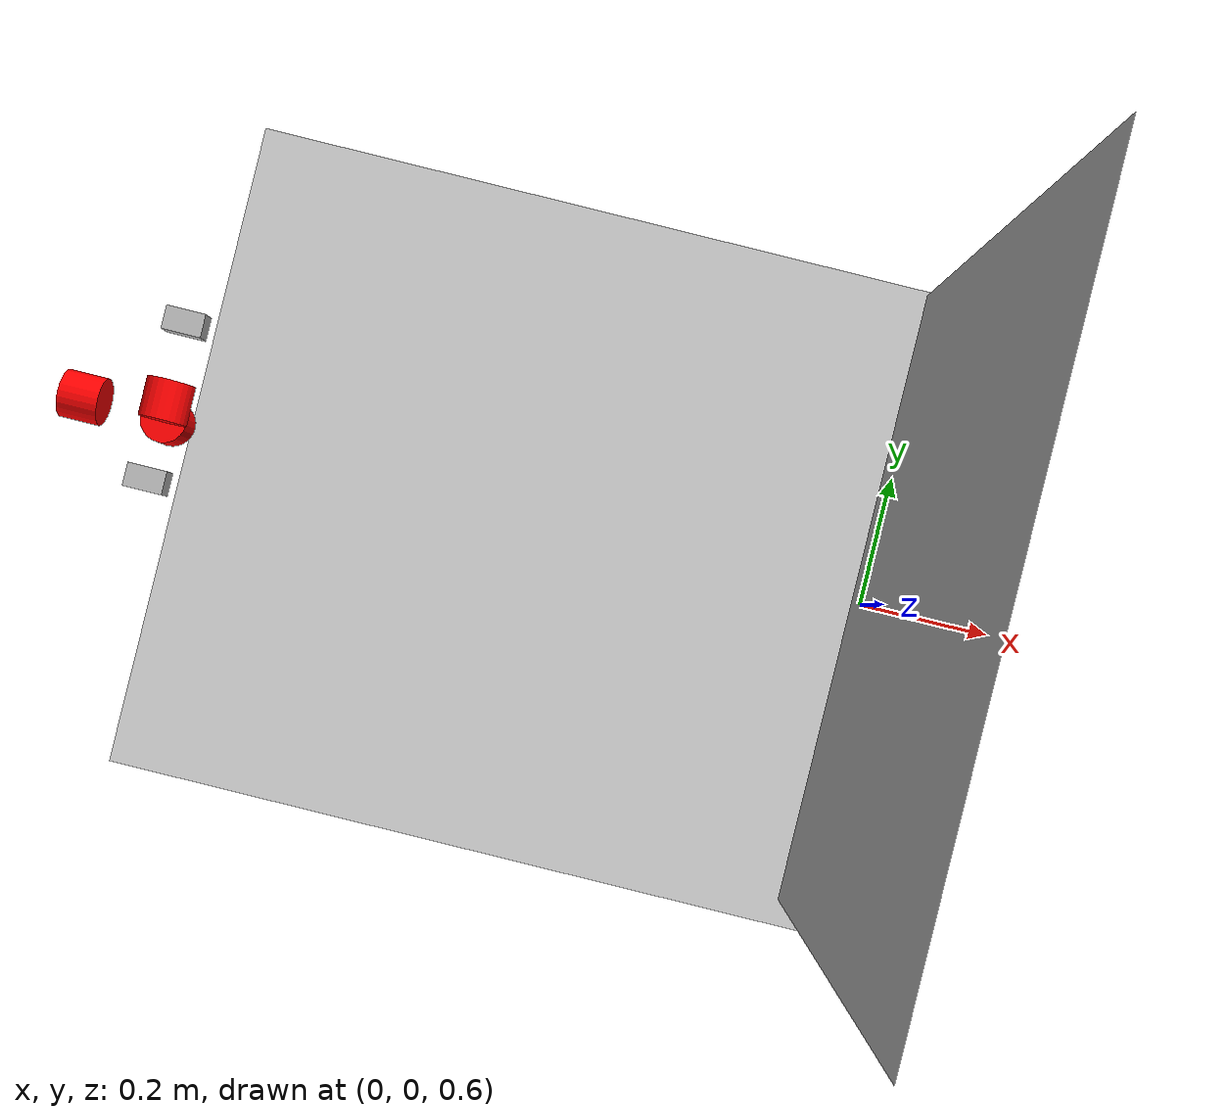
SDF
<?xml version="1.0" ?>
<sdf version="1.8">
  <world name="calibration">
    <plugin name='gz::sim::systems::Physics' filename='gz-sim-physics-system'/>
    <plugin name='gz::sim::systems::UserCommands' filename='gz-sim-user-commands-system'/>
    <plugin name='gz::sim::systems::SceneBroadcaster' filename='gz-sim-scene-broadcaster-system'/>
    <plugin name='gz::sim::systems::Contact' filename='gz-sim-contact-system'/>
    <plugin name='gz::sim::systems::Imu' filename='gz-sim-imu-system'/>
    <plugin name='gz::sim::systems::Sensors' filename='gz-sim-sensors-system'>
      <render_engine>ogre2</render_engine>
    </plugin>

    <!-- SCENE -->
    <scene>
      <ambient>1.0 1.0 1.0</ambient>
      <background>0.8 0.8 0.8</background>
    </scene>

    <!-- SUN -->
    <light name='sunUTC' type='directional'>
      <pose>0 0 500 0 -0 0</pose>
      <cast_shadows>true</cast_shadows>
      <intensity>1</intensity>
      <direction>0.001 0.625 -0.78</direction>
      <diffuse>0.904 0.904 0.904 1</diffuse>
      <specular>0.271 0.271 0.271 1</specular>
      <attenuation>
        <range>2000</range>
        <linear>0</linear>
        <constant>1</constant>
        <quadratic>0</quadratic>
      </attenuation>
      <spot>
        <inner_angle>0</inner_angle>
        <outer_angle>0</outer_angle>
        <falloff>0</falloff>
      </spot>
    </light>

    <!-- GROUND PLANE -->
    <model name="ground_plane">
      <static>true</static>
      <link name="link">
        <collision name="collision">
          <geometry>
            <plane>
              <normal>0 0 1</normal>
              <size>100 100</size>
            </plane>
          </geometry>
        </collision>
        <visual name="visual">
          <geometry>
            <plane>
              <normal>0 0 1</normal>
              <size>100 100</size>
            </plane>
          </geometry>
          <material>
            <ambient>0.8 0.8 0.8 1</ambient>
            <diffuse>0.8 0.8 0.8 1</diffuse>
            <specular>0.8 0.8 0.8 1</specular>
          </material>
        </visual>
      </link>
    </model>

    <!-- ARPILGRID -->
    <include>
      <static>true</static>
      <uri>model://aprilgrid</uri>
      <pose>0 0.5 0.515 1.5708 0 -1.5708</pose>
    </include>

    <!-- GIMBAL -->
    <include>
      <uri>model://gimbal</uri>
      <pose>-1 0 1 0 0 0</pose>
    </include>
  </world>
</sdf>

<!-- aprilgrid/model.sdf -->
<sdf version="1.6">
  <model name="aprilgrid">
    <allow_auto_disable>true</allow_auto_disable>
    <link name="aprilgrid">
      <kinematic>true</kinematic>

      <visual name="visual">
        <geometry>
          <mesh>
            <uri>model://aprilgrid/aprilgrid.dae</uri>
            <scale>1 1 1</scale>
          </mesh>
        </geometry>
      </visual>
    </link>
    <plugin
      filename="gz-sim-pose-publisher-system"
      name="gz::sim::systems::PosePublisher">
      <publish_link_pose>false</publish_link_pose>
      <publish_collision_pose>false</publish_collision_pose>
      <publish_visual_pose>false</publish_visual_pose>
      <publish_nested_model_pose>true</publish_nested_model_pose>
    </plugin>
  </model>
</sdf>

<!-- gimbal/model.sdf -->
<sdf version="1.9">
  <model name="gimbal">

    <!-- Gimbal base -->
    <link name="gimbal_base">
      <gravity>0</gravity>
      <pose>0.0 0.0 0.0 0.0 0.0 0.0</pose>
    </link>

    <!-- Gimbal yaw -->
    <link name="gimbal_yaw">
      <gravity>0</gravity>
      <pose>0.0 0.0 0.0 0.0 0.0 0.0</pose>

      <inertial>
        <inertia>
          <ixx>0.032</ixx>
          <ixy>0</ixy>
          <ixz>0</ixz>
          <iyy>0.032</iyy>
          <iyz>0</iyz>
          <izz>0.00012</izz>
        </inertia>
        <mass>0.200</mass>
      </inertial>

      <visual name="visual">
        <geometry>
          <cylinder>
            <radius>0.03</radius>
            <length>0.05</length>
          </cylinder>
        </geometry>

        <material>
            <ambient>1.0 0.0 0.0 1</ambient>
            <diffuse>1.0 0.0 0.0 1</diffuse>
            <specular>1.0 0.0 0.0 1</specular>
        </material>
      </visual>
    </link>

    <!-- Gimbal Roll -->
    <link name="gimbal_roll">
      <gravity>0</gravity>
      <pose relative_to="gimbal_yaw">-0.08 0 0.1 0 1.5708 0</pose>

      <inertial>
        <inertia>
          <ixx>0.032</ixx>
          <ixy>0</ixy>
          <ixz>0</ixz>
          <iyy>0.032</iyy>
          <iyz>0</iyz>
          <izz>0.00012</izz>
        </inertia>
        <mass>0.200</mass>
      </inertial>

      <visual name="visual">
        <geometry>
          <cylinder>
            <radius>0.03</radius>
            <length>0.05</length>
          </cylinder>
        </geometry>

        <material>
            <ambient>1.0 0.0 0.0 1</ambient>
            <diffuse>1.0 0.0 0.0 1</diffuse>
            <specular>1.0 0.0 0.0 1</specular>
        </material>
      </visual>
    </link>

    <!-- Gimbal pitch -->
    <link name="gimbal_pitch">
      <gravity>0</gravity>
      <pose relative_to="gimbal_roll">0 0.02 0.1 1.5708 0 0</pose>

      <inertial>
        <inertia>
          <ixx>0.032</ixx>
          <ixy>0</ixy>
          <ixz>0</ixz>
          <iyy>0.032</iyy>
          <iyz>0</iyz>
          <izz>0.00012</izz>
        </inertia>
        <mass>0.200</mass>
      </inertial>

      <visual name="visual">
        <geometry>
          <cylinder>
            <radius>0.03</radius>
            <length>0.05</length>
          </cylinder>
        </geometry>

        <material>
            <ambient>1.0 0.0 0.0 1</ambient>
            <diffuse>1.0 0.0 0.0 1</diffuse>
            <specular>1.0 0.0 0.0 1</specular>
        </material>
      </visual>
    </link>

    <!-- camera0 -->
    <link name="camera0">
      <gravity>0</gravity>
      <pose relative_to="gimbal_pitch">0 0 -0.1 -1.5708 0 1.5708</pose>

      <inertial>
        <inertia>
          <ixx>0.032</ixx>
          <ixy>0</ixy>
          <ixz>0</ixz>
          <iyy>0.032</iyy>
          <iyz>0</iyz>
          <izz>0.00012</izz>
        </inertia>
        <mass>0.08</mass>
      </inertial>

      <visual name="visual">
        <pose>0.0 0.0 0.0 0 0 0</pose>
        <geometry>
          <box>
            <size>0.05 0.03 0.03</size>
          </box>
        </geometry>
      </visual>

      <collision name="collision">
        <pose>0.0 0.0 0.0 0 0 0</pose>
        <geometry>
          <box>
            <size>0.05 0.03 0.03</size>
          </box>
        </geometry>
      </collision>

      <sensor name="camera0" type="camera">
        <topic>/gimbal/camera0</topic>
        <camera>
          <horizontal_fov>1.047</horizontal_fov>
          <image>
            <width>640</width>
            <height>640</height>
          </image>
        </camera>

        <always_on>1</always_on>
        <update_rate>20</update_rate>
        <visualize>true</visualize>
      </sensor>
    </link>

    <!-- camera1 -->
    <link name="camera1">
      <gravity>0</gravity>
      <pose relative_to="gimbal_pitch">0 0 0.1 -1.5708 0 1.5708</pose>

      <inertial>
        <inertia>
          <ixx>0.032</ixx>
          <ixy>0</ixy>
          <ixz>0</ixz>
          <iyy>0.032</iyy>
          <iyz>0</iyz>
          <izz>0.00012</izz>
        </inertia>
        <mass>0.08</mass>
      </inertial>

      <visual name="visual">
        <pose>0.0 0.0 0.0 0 0 0</pose>
        <geometry>
          <box>
            <size>0.05 0.03 0.03</size>
          </box>
        </geometry>
      </visual>

      <collision name="collision">
        <pose>0.0 0.0 0.0 0 0 0</pose>
        <geometry>
          <box>
            <size>0.05 0.03 0.03</size>
          </box>
        </geometry>
      </collision>

      <sensor name="camera1" type="camera">
        <topic>/gimbal/camera1</topic>
        <camera>
          <horizontal_fov>1.047</horizontal_fov>
          <image>
            <width>640</width>
            <height>640</height>
          </image>
        </camera>

        <always_on>1</always_on>
        <update_rate>20</update_rate>
        <visualize>true</visualize>
      </sensor>
    </link>

    <!-- World to gimbal base joint  -->
    <joint name="world_fixed" type="fixed">
      <parent>world</parent>
      <child>gimbal_base</child>
    </joint>

    <!-- Yaw joint -->
    <joint name="joint_yaw" type="revolute">
      <pose>0.0 0.0 0.0 0.0 0.0 0.0</pose>
      <parent>gimbal_base</parent>
      <child>gimbal_yaw</child>
      <axis>
        <xyz>0 0 1</xyz>
        <dynamics>
          <damping>1.0</damping>
        </dynamics>
      </axis>
    </joint>
    <plugin
        filename="gz-sim-joint-position-controller-system"
        name="gz::sim::systems::JointPositionController">
      <joint_name>joint_yaw</joint_name>
      <topic>/gimbal/joint0_cmd</topic>
      <p_gain>10</p_gain>
      <i_gain>0.01</i_gain>
      <d_gain>0.5</d_gain>
      <i_max>1</i_max>
      <i_min>-1</i_min>
      <cmd_max>1000</cmd_max>
      <cmd_min>-1000</cmd_min>
    </plugin>
    <plugin
        filename="gz-sim-joint-state-publisher-system"
        name="gz::sim::systems::JointStatePublisher">
      <joint_name>joint_yaw</joint_name>
      <topic>/gimbal/joint0_state</topic>
    </plugin>

    <!-- Roll joint -->
    <joint name="joint_roll" type="revolute">
      <pose>0 0.0 0 0 0 0</pose>
      <parent>gimbal_yaw</parent>
      <child>gimbal_roll</child>
      <axis>
        <xyz>0 0 1</xyz>
        <dynamics>
          <damping>1.0</damping>
        </dynamics>
      </axis>
    </joint>
    <plugin
        filename="gz-sim-joint-position-controller-system"
        name="gz::sim::systems::JointPositionController">
      <joint_name>joint_roll</joint_name>
      <topic>/gimbal/joint1_cmd</topic>
      <p_gain>10</p_gain>
      <i_gain>0.01</i_gain>
      <d_gain>0.5</d_gain>
      <i_max>1</i_max>
      <i_min>-1</i_min>
      <cmd_max>1000</cmd_max>
      <cmd_min>-1000</cmd_min>
    </plugin>
    <plugin
        filename="gz-sim-joint-state-publisher-system"
        name="gz::sim::systems::JointStatePublisher">
      <joint_name>joint_roll</joint_name>
      <topic>/gimbal/joint1_state</topic>
    </plugin>

    <!-- Pitch joint -->
    <joint name="joint_pitch" type="revolute">
      <pose>0 0.0 0 0 0 0</pose>
      <parent>gimbal_roll</parent>
      <child>gimbal_pitch</child>
      <axis>
        <xyz>0 0 1</xyz>
        <dynamics>
          <damping>1.0</damping>
        </dynamics>
      </axis>
    </joint>
    <plugin
        filename="gz-sim-joint-position-controller-system"
        name="gz::sim::systems::JointPositionController">
      <joint_name>joint_pitch</joint_name>
      <topic>/gimbal/joint2_cmd</topic>
      <p_gain>10</p_gain>
      <i_gain>0.01</i_gain>
      <d_gain>0.5</d_gain>
      <i_max>1</i_max>
      <i_min>-1</i_min>
      <cmd_max>1000</cmd_max>
      <cmd_min>-1000</cmd_min>
    </plugin>
    <plugin
        filename="gz-sim-joint-state-publisher-system"
        name="gz::sim::systems::JointStatePublisher">
      <joint_name>joint_pitch</joint_name>
      <topic>/gimbal/joint2_state</topic>
    </plugin>

    <!-- Gimbal pitch to camera0 -->
    <joint name="camera0_extrinsic" type="fixed">
      <pose>0 0 0 0 0 0</pose>
      <parent>gimbal_pitch</parent>
      <child>camera0</child>
    </joint>

    <!-- Gimbal pitch to camera1 -->
    <joint name="camera1_extrinsic" type="fixed">
      <pose>0 0 0 0 0 0</pose>
      <parent>gimbal_pitch</parent>
      <child>camera1</child>
    </joint>

    <!-- Pose publisher -->
    <plugin
      filename="gz-sim-pose-publisher-system"
      name="gz::sim::systems::PosePublisher">
      <publish_model_pose>true</publish_model_pose>
      <publish_nested_model_pose>true</publish_nested_model_pose>
      <publish_link_pose>false</publish_link_pose>
      <publish_collision_pose>false</publish_collision_pose>
      <publish_visual_pose>false</publish_visual_pose>
    </plugin>
  </model>
</sdf>
